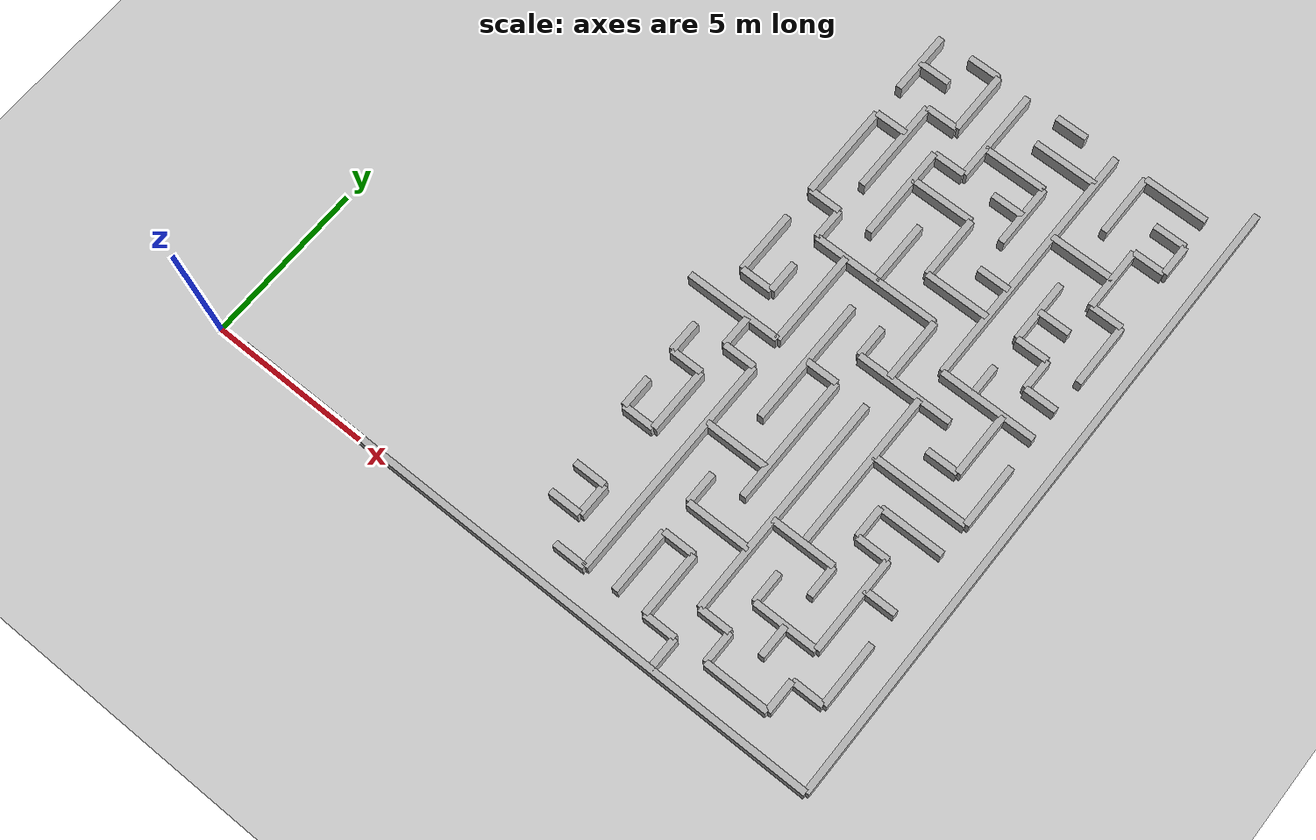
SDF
<sdf version="1.6">
 <world name="maze_world">
  <model name="ground_plane">
   <static>true</static>
   <link name="link">
    <collision name="collision">
     <geometry><plane><normal>0 0 1</normal><size>100 100</size></plane></geometry>
    </collision>
    <visual name="visual">
     <geometry><plane><normal>0 0 1</normal><size>100 100</size></plane></geometry>
     <material><ambient>0.8 0.8 0.8 1</ambient></material>
    </visual>
   </link>
  </model>
  <model name="wall_4">
   <static>true</static>
   <pose>11.5 1 0 0 0 0</pose>
   <link name="link">
    <collision name="collision"><geometry><box><size>1 0.2 1</size></box></geometry></collision>
    <visual name="visual">
     <geometry><box><size>1 0.2 1</size></box></geometry>
     <material><ambient>0.7 0.7 0.7 1</ambient></material>
    </visual>
   </link>
  </model>
  <model name="wall_5">
   <static>true</static>
   <pose>14.5 1 0 0 0 0</pose>
   <link name="link">
    <collision name="collision"><geometry><box><size>1 0.2 1</size></box></geometry></collision>
    <visual name="visual">
     <geometry><box><size>1 0.2 1</size></box></geometry>
     <material><ambient>0.7 0.7 0.7 1</ambient></material>
    </visual>
   </link>
  </model>
  <model name="wall_6">
   <static>true</static>
   <pose>17 1 0 0 0 0</pose>
   <link name="link">
    <collision name="collision"><geometry><box><size>2 0.2 1</size></box></geometry></collision>
    <visual name="visual">
     <geometry><box><size>2 0.2 1</size></box></geometry>
     <material><ambient>0.7 0.7 0.7 1</ambient></material>
    </visual>
   </link>
  </model>
  <model name="wall_11">
   <static>true</static>
   <pose>10.5 2 0 0 0 0</pose>
   <link name="link">
    <collision name="collision"><geometry><box><size>1 0.2 1</size></box></geometry></collision>
    <visual name="visual">
     <geometry><box><size>1 0.2 1</size></box></geometry>
     <material><ambient>0.7 0.7 0.7 1</ambient></material>
    </visual>
   </link>
  </model>
  <model name="wall_12">
   <static>true</static>
   <pose>15.5 2 0 0 0 0</pose>
   <link name="link">
    <collision name="collision"><geometry><box><size>1 0.2 1</size></box></geometry></collision>
    <visual name="visual">
     <geometry><box><size>1 0.2 1</size></box></geometry>
     <material><ambient>0.7 0.7 0.7 1</ambient></material>
    </visual>
   </link>
  </model>
  <model name="wall_13">
   <static>true</static>
   <pose>18.5 2 0 0 0 0</pose>
   <link name="link">
    <collision name="collision"><geometry><box><size>1 0.2 1</size></box></geometry></collision>
    <visual name="visual">
     <geometry><box><size>1 0.2 1</size></box></geometry>
     <material><ambient>0.7 0.7 0.7 1</ambient></material>
    </visual>
   </link>
  </model>
  <model name="wall_17">
   <static>true</static>
   <pose>10.5 3 0 0 0 0</pose>
   <link name="link">
    <collision name="collision"><geometry><box><size>1 0.2 1</size></box></geometry></collision>
    <visual name="visual">
     <geometry><box><size>1 0.2 1</size></box></geometry>
     <material><ambient>0.7 0.7 0.7 1</ambient></material>
    </visual>
   </link>
  </model>
  <model name="wall_18">
   <static>true</static>
   <pose>13.5 3 0 0 0 0</pose>
   <link name="link">
    <collision name="collision"><geometry><box><size>1 0.2 1</size></box></geometry></collision>
    <visual name="visual">
     <geometry><box><size>1 0.2 1</size></box></geometry>
     <material><ambient>0.7 0.7 0.7 1</ambient></material>
    </visual>
   </link>
  </model>
  <model name="wall_19">
   <static>true</static>
   <pose>17 3 0 0 0 0</pose>
   <link name="link">
    <collision name="collision"><geometry><box><size>2 0.2 1</size></box></geometry></collision>
    <visual name="visual">
     <geometry><box><size>2 0.2 1</size></box></geometry>
     <material><ambient>0.7 0.7 0.7 1</ambient></material>
    </visual>
   </link>
  </model>
  <model name="wall_24">
   <static>true</static>
   <pose>14 4 0 0 0 0</pose>
   <link name="link">
    <collision name="collision"><geometry><box><size>2 0.2 1</size></box></geometry></collision>
    <visual name="visual">
     <geometry><box><size>2 0.2 1</size></box></geometry>
     <material><ambient>0.7 0.7 0.7 1</ambient></material>
    </visual>
   </link>
  </model>
  <model name="wall_27">
   <static>true</static>
   <pose>10.5 5 0 0 0 0</pose>
   <link name="link">
    <collision name="collision"><geometry><box><size>1 0.2 1</size></box></geometry></collision>
    <visual name="visual">
     <geometry><box><size>1 0.2 1</size></box></geometry>
     <material><ambient>0.7 0.7 0.7 1</ambient></material>
    </visual>
   </link>
  </model>
  <model name="wall_28">
   <static>true</static>
   <pose>16 5 0 0 0 0</pose>
   <link name="link">
    <collision name="collision"><geometry><box><size>2 0.2 1</size></box></geometry></collision>
    <visual name="visual">
     <geometry><box><size>2 0.2 1</size></box></geometry>
     <material><ambient>0.7 0.7 0.7 1</ambient></material>
    </visual>
   </link>
  </model>
  <model name="wall_29">
   <static>true</static>
   <pose>18.5 5 0 0 0 0</pose>
   <link name="link">
    <collision name="collision"><geometry><box><size>1 0.2 1</size></box></geometry></collision>
    <visual name="visual">
     <geometry><box><size>1 0.2 1</size></box></geometry>
     <material><ambient>0.7 0.7 0.7 1</ambient></material>
    </visual>
   </link>
  </model>
  <model name="wall_32">
   <static>true</static>
   <pose>13 6 0 0 0 0</pose>
   <link name="link">
    <collision name="collision"><geometry><box><size>2 0.2 1</size></box></geometry></collision>
    <visual name="visual">
     <geometry><box><size>2 0.2 1</size></box></geometry>
     <material><ambient>0.7 0.7 0.7 1</ambient></material>
    </visual>
   </link>
  </model>
  <model name="wall_33">
   <static>true</static>
   <pose>17.5 6 0 0 0 0</pose>
   <link name="link">
    <collision name="collision"><geometry><box><size>1 0.2 1</size></box></geometry></collision>
    <visual name="visual">
     <geometry><box><size>1 0.2 1</size></box></geometry>
     <material><ambient>0.7 0.7 0.7 1</ambient></material>
    </visual>
   </link>
  </model>
  <model name="wall_36">
   <static>true</static>
   <pose>10.5 7 0 0 0 0</pose>
   <link name="link">
    <collision name="collision"><geometry><box><size>1 0.2 1</size></box></geometry></collision>
    <visual name="visual">
     <geometry><box><size>1 0.2 1</size></box></geometry>
     <material><ambient>0.7 0.7 0.7 1</ambient></material>
    </visual>
   </link>
  </model>
  <model name="wall_37">
   <static>true</static>
   <pose>18 7 0 0 0 0</pose>
   <link name="link">
    <collision name="collision"><geometry><box><size>2 0.2 1</size></box></geometry></collision>
    <visual name="visual">
     <geometry><box><size>2 0.2 1</size></box></geometry>
     <material><ambient>0.7 0.7 0.7 1</ambient></material>
    </visual>
   </link>
  </model>
  <model name="wall_39">
   <static>true</static>
   <pose>11.5 8 0 0 0 0</pose>
   <link name="link">
    <collision name="collision"><geometry><box><size>1 0.2 1</size></box></geometry></collision>
    <visual name="visual">
     <geometry><box><size>1 0.2 1</size></box></geometry>
     <material><ambient>0.7 0.7 0.7 1</ambient></material>
    </visual>
   </link>
  </model>
  <model name="wall_40">
   <static>true</static>
   <pose>17.5 8 0 0 0 0</pose>
   <link name="link">
    <collision name="collision"><geometry><box><size>3 0.2 1</size></box></geometry></collision>
    <visual name="visual">
     <geometry><box><size>3 0.2 1</size></box></geometry>
     <material><ambient>0.7 0.7 0.7 1</ambient></material>
    </visual>
   </link>
  </model>
  <model name="wall_43">
   <static>true</static>
   <pose>10.5 9 0 0 0 0</pose>
   <link name="link">
    <collision name="collision"><geometry><box><size>3 0.2 1</size></box></geometry></collision>
    <visual name="visual">
     <geometry><box><size>3 0.2 1</size></box></geometry>
     <material><ambient>0.7 0.7 0.7 1</ambient></material>
    </visual>
   </link>
  </model>
  <model name="wall_44">
   <static>true</static>
   <pose>13.5 9 0 0 0 0</pose>
   <link name="link">
    <collision name="collision"><geometry><box><size>1 0.2 1</size></box></geometry></collision>
    <visual name="visual">
     <geometry><box><size>1 0.2 1</size></box></geometry>
     <material><ambient>0.7 0.7 0.7 1</ambient></material>
    </visual>
   </link>
  </model>
  <model name="wall_45">
   <static>true</static>
   <pose>17.5 9 0 0 0 0</pose>
   <link name="link">
    <collision name="collision"><geometry><box><size>1 0.2 1</size></box></geometry></collision>
    <visual name="visual">
     <geometry><box><size>1 0.2 1</size></box></geometry>
     <material><ambient>0.7 0.7 0.7 1</ambient></material>
    </visual>
   </link>
  </model>
  <model name="wall_49">
   <static>true</static>
   <pose>10.5 10 0 0 0 0</pose>
   <link name="link">
    <collision name="collision"><geometry><box><size>1 0.2 1</size></box></geometry></collision>
    <visual name="visual">
     <geometry><box><size>1 0.2 1</size></box></geometry>
     <material><ambient>0.7 0.7 0.7 1</ambient></material>
    </visual>
   </link>
  </model>
  <model name="wall_50">
   <static>true</static>
   <pose>15.5 10 0 0 0 0</pose>
   <link name="link">
    <collision name="collision"><geometry><box><size>3 0.2 1</size></box></geometry></collision>
    <visual name="visual">
     <geometry><box><size>3 0.2 1</size></box></geometry>
     <material><ambient>0.7 0.7 0.7 1</ambient></material>
    </visual>
   </link>
  </model>
  <model name="wall_55">
   <static>true</static>
   <pose>17.5 11 0 0 0 0</pose>
   <link name="link">
    <collision name="collision"><geometry><box><size>3 0.2 1</size></box></geometry></collision>
    <visual name="visual">
     <geometry><box><size>3 0.2 1</size></box></geometry>
     <material><ambient>0.7 0.7 0.7 1</ambient></material>
    </visual>
   </link>
  </model>
  <model name="wall_58">
   <static>true</static>
   <pose>13 12 0 0 0 0</pose>
   <link name="link">
    <collision name="collision"><geometry><box><size>4 0.2 1</size></box></geometry></collision>
    <visual name="visual">
     <geometry><box><size>4 0.2 1</size></box></geometry>
     <material><ambient>0.7 0.7 0.7 1</ambient></material>
    </visual>
   </link>
  </model>
  <model name="wall_59">
   <static>true</static>
   <pose>18.5 12 0 0 0 0</pose>
   <link name="link">
    <collision name="collision"><geometry><box><size>1 0.2 1</size></box></geometry></collision>
    <visual name="visual">
     <geometry><box><size>1 0.2 1</size></box></geometry>
     <material><ambient>0.7 0.7 0.7 1</ambient></material>
    </visual>
   </link>
  </model>
  <model name="wall_63">
   <static>true</static>
   <pose>10.5 13 0 0 0 0</pose>
   <link name="link">
    <collision name="collision"><geometry><box><size>1 0.2 1</size></box></geometry></collision>
    <visual name="visual">
     <geometry><box><size>1 0.2 1</size></box></geometry>
     <material><ambient>0.7 0.7 0.7 1</ambient></material>
    </visual>
   </link>
  </model>
  <model name="wall_64">
   <static>true</static>
   <pose>15 13 0 0 0 0</pose>
   <link name="link">
    <collision name="collision"><geometry><box><size>2 0.2 1</size></box></geometry></collision>
    <visual name="visual">
     <geometry><box><size>2 0.2 1</size></box></geometry>
     <material><ambient>0.7 0.7 0.7 1</ambient></material>
    </visual>
   </link>
  </model>
  <model name="wall_65">
   <static>true</static>
   <pose>17.5 13 0 0 0 0</pose>
   <link name="link">
    <collision name="collision"><geometry><box><size>1 0.2 1</size></box></geometry></collision>
    <visual name="visual">
     <geometry><box><size>1 0.2 1</size></box></geometry>
     <material><ambient>0.7 0.7 0.7 1</ambient></material>
    </visual>
   </link>
  </model>
  <model name="wall_70">
   <static>true</static>
   <pose>15.5 14 0 0 0 0</pose>
   <link name="link">
    <collision name="collision"><geometry><box><size>1 0.2 1</size></box></geometry></collision>
    <visual name="visual">
     <geometry><box><size>1 0.2 1</size></box></geometry>
     <material><ambient>0.7 0.7 0.7 1</ambient></material>
    </visual>
   </link>
  </model>
  <model name="wall_71">
   <static>true</static>
   <pose>17.5 14 0 0 0 0</pose>
   <link name="link">
    <collision name="collision"><geometry><box><size>1 0.2 1</size></box></geometry></collision>
    <visual name="visual">
     <geometry><box><size>1 0.2 1</size></box></geometry>
     <material><ambient>0.7 0.7 0.7 1</ambient></material>
    </visual>
   </link>
  </model>
  <model name="wall_74">
   <static>true</static>
   <pose>13 15 0 0 0 0</pose>
   <link name="link">
    <collision name="collision"><geometry><box><size>2 0.2 1</size></box></geometry></collision>
    <visual name="visual">
     <geometry><box><size>2 0.2 1</size></box></geometry>
     <material><ambient>0.7 0.7 0.7 1</ambient></material>
    </visual>
   </link>
  </model>
  <model name="wall_75">
   <static>true</static>
   <pose>18.5 15 0 0 0 0</pose>
   <link name="link">
    <collision name="collision"><geometry><box><size>1 0.2 1</size></box></geometry></collision>
    <visual name="visual">
     <geometry><box><size>1 0.2 1</size></box></geometry>
     <material><ambient>0.7 0.7 0.7 1</ambient></material>
    </visual>
   </link>
  </model>
  <model name="wall_78">
   <static>true</static>
   <pose>10.5 16 0 0 0 0</pose>
   <link name="link">
    <collision name="collision"><geometry><box><size>1 0.2 1</size></box></geometry></collision>
    <visual name="visual">
     <geometry><box><size>1 0.2 1</size></box></geometry>
     <material><ambient>0.7 0.7 0.7 1</ambient></material>
    </visual>
   </link>
  </model>
  <model name="wall_79">
   <static>true</static>
   <pose>12.5 16 0 0 0 0</pose>
   <link name="link">
    <collision name="collision"><geometry><box><size>1 0.2 1</size></box></geometry></collision>
    <visual name="visual">
     <geometry><box><size>1 0.2 1</size></box></geometry>
     <material><ambient>0.7 0.7 0.7 1</ambient></material>
    </visual>
   </link>
  </model>
  <model name="wall_80">
   <static>true</static>
   <pose>14.5 16 0 0 0 0</pose>
   <link name="link">
    <collision name="collision"><geometry><box><size>1 0.2 1</size></box></geometry></collision>
    <visual name="visual">
     <geometry><box><size>1 0.2 1</size></box></geometry>
     <material><ambient>0.7 0.7 0.7 1</ambient></material>
    </visual>
   </link>
  </model>
  <model name="wall_81">
   <static>true</static>
   <pose>17 16 0 0 0 0</pose>
   <link name="link">
    <collision name="collision"><geometry><box><size>2 0.2 1</size></box></geometry></collision>
    <visual name="visual">
     <geometry><box><size>2 0.2 1</size></box></geometry>
     <material><ambient>0.7 0.7 0.7 1</ambient></material>
    </visual>
   </link>
  </model>
  <model name="wall_85">
   <static>true</static>
   <pose>11.5 17 0 0 0 0</pose>
   <link name="link">
    <collision name="collision"><geometry><box><size>1 0.2 1</size></box></geometry></collision>
    <visual name="visual">
     <geometry><box><size>1 0.2 1</size></box></geometry>
     <material><ambient>0.7 0.7 0.7 1</ambient></material>
    </visual>
   </link>
  </model>
  <model name="wall_86">
   <static>true</static>
   <pose>14 17 0 0 0 0</pose>
   <link name="link">
    <collision name="collision"><geometry><box><size>2 0.2 1</size></box></geometry></collision>
    <visual name="visual">
     <geometry><box><size>2 0.2 1</size></box></geometry>
     <material><ambient>0.7 0.7 0.7 1</ambient></material>
    </visual>
   </link>
  </model>
  <model name="wall_87">
   <static>true</static>
   <pose>18.5 17 0 0 0 0</pose>
   <link name="link">
    <collision name="collision"><geometry><box><size>1 0.2 1</size></box></geometry></collision>
    <visual name="visual">
     <geometry><box><size>1 0.2 1</size></box></geometry>
     <material><ambient>0.7 0.7 0.7 1</ambient></material>
    </visual>
   </link>
  </model>
  <model name="wall_91">
   <static>true</static>
   <pose>10.5 18 0 0 0 0</pose>
   <link name="link">
    <collision name="collision"><geometry><box><size>1 0.2 1</size></box></geometry></collision>
    <visual name="visual">
     <geometry><box><size>1 0.2 1</size></box></geometry>
     <material><ambient>0.7 0.7 0.7 1</ambient></material>
    </visual>
   </link>
  </model>
  <model name="wall_92">
   <static>true</static>
   <pose>15 18 0 0 0 0</pose>
   <link name="link">
    <collision name="collision"><geometry><box><size>2 0.2 1</size></box></geometry></collision>
    <visual name="visual">
     <geometry><box><size>2 0.2 1</size></box></geometry>
     <material><ambient>0.7 0.7 0.7 1</ambient></material>
    </visual>
   </link>
  </model>
  <model name="wall_93">
   <static>true</static>
   <pose>18.5 18 0 0 0 0</pose>
   <link name="link">
    <collision name="collision"><geometry><box><size>1 0.2 1</size></box></geometry></collision>
    <visual name="visual">
     <geometry><box><size>1 0.2 1</size></box></geometry>
     <material><ambient>0.7 0.7 0.7 1</ambient></material>
    </visual>
   </link>
  </model>
  <model name="wall_95">
   <static>true</static>
   <pose>11.5 19 0 0 0 0</pose>
   <link name="link">
    <collision name="collision"><geometry><box><size>1 0.2 1</size></box></geometry></collision>
    <visual name="visual">
     <geometry><box><size>1 0.2 1</size></box></geometry>
     <material><ambient>0.7 0.7 0.7 1</ambient></material>
    </visual>
   </link>
  </model>
  <model name="wall_96">
   <static>true</static>
   <pose>14.5 19 0 0 0 0</pose>
   <link name="link">
    <collision name="collision"><geometry><box><size>1 0.2 1</size></box></geometry></collision>
    <visual name="visual">
     <geometry><box><size>1 0.2 1</size></box></geometry>
     <material><ambient>0.7 0.7 0.7 1</ambient></material>
    </visual>
   </link>
  </model>
  <model name="wall_97">
   <static>true</static>
   <pose>18 19 0 0 0 0</pose>
   <link name="link">
    <collision name="collision"><geometry><box><size>2 0.2 1</size></box></geometry></collision>
    <visual name="visual">
     <geometry><box><size>2 0.2 1</size></box></geometry>
     <material><ambient>0.7 0.7 0.7 1</ambient></material>
    </visual>
   </link>
  </model>
  <model name="wall_142">
   <static>true</static>
   <pose>10 5.5 0 0 0 0</pose>
   <link name="link">
    <collision name="collision"><geometry><box><size>0.2 1 1</size></box></geometry></collision>
    <visual name="visual">
     <geometry><box><size>0.2 1 1</size></box></geometry>
     <material><ambient>0.7 0.7 0.7 1</ambient></material>
    </visual>
   </link>
  </model>
  <model name="wall_143">
   <static>true</static>
   <pose>10 7.5 0 0 0 0</pose>
   <link name="link">
    <collision name="collision"><geometry><box><size>0.2 1 1</size></box></geometry></collision>
    <visual name="visual">
     <geometry><box><size>0.2 1 1</size></box></geometry>
     <material><ambient>0.7 0.7 0.7 1</ambient></material>
    </visual>
   </link>
  </model>
  <model name="wall_144">
   <static>true</static>
   <pose>10 11 0 0 0 0</pose>
   <link name="link">
    <collision name="collision"><geometry><box><size>0.2 2 1</size></box></geometry></collision>
    <visual name="visual">
     <geometry><box><size>0.2 2 1</size></box></geometry>
     <material><ambient>0.7 0.7 0.7 1</ambient></material>
    </visual>
   </link>
  </model>
  <model name="wall_145">
   <static>true</static>
   <pose>10 14.5 0 0 0 0</pose>
   <link name="link">
    <collision name="collision"><geometry><box><size>0.2 3 1</size></box></geometry></collision>
    <visual name="visual">
     <geometry><box><size>0.2 3 1</size></box></geometry>
     <material><ambient>0.7 0.7 0.7 1</ambient></material>
    </visual>
   </link>
  </model>
  <model name="wall_146">
   <static>true</static>
   <pose>10 18 0 0 0 0</pose>
   <link name="link">
    <collision name="collision"><geometry><box><size>0.2 2 1</size></box></geometry></collision>
    <visual name="visual">
     <geometry><box><size>0.2 2 1</size></box></geometry>
     <material><ambient>0.7 0.7 0.7 1</ambient></material>
    </visual>
   </link>
  </model>
  <model name="wall_147">
   <static>true</static>
   <pose>11 2.5 0 0 0 0</pose>
   <link name="link">
    <collision name="collision"><geometry><box><size>0.2 1 1</size></box></geometry></collision>
    <visual name="visual">
     <geometry><box><size>0.2 1 1</size></box></geometry>
     <material><ambient>0.7 0.7 0.7 1</ambient></material>
    </visual>
   </link>
  </model>
  <model name="wall_148">
   <static>true</static>
   <pose>11 6 0 0 0 0</pose>
   <link name="link">
    <collision name="collision"><geometry><box><size>0.2 2 1</size></box></geometry></collision>
    <visual name="visual">
     <geometry><box><size>0.2 2 1</size></box></geometry>
     <material><ambient>0.7 0.7 0.7 1</ambient></material>
    </visual>
   </link>
  </model>
  <model name="wall_149">
   <static>true</static>
   <pose>11 8.5 0 0 0 0</pose>
   <link name="link">
    <collision name="collision"><geometry><box><size>0.2 1 1</size></box></geometry></collision>
    <visual name="visual">
     <geometry><box><size>0.2 1 1</size></box></geometry>
     <material><ambient>0.7 0.7 0.7 1</ambient></material>
    </visual>
   </link>
  </model>
  <model name="wall_150">
   <static>true</static>
   <pose>11 10.5 0 0 0 0</pose>
   <link name="link">
    <collision name="collision"><geometry><box><size>0.2 1 1</size></box></geometry></collision>
    <visual name="visual">
     <geometry><box><size>0.2 1 1</size></box></geometry>
     <material><ambient>0.7 0.7 0.7 1</ambient></material>
    </visual>
   </link>
  </model>
  <model name="wall_151">
   <static>true</static>
   <pose>11 12.5 0 0 0 0</pose>
   <link name="link">
    <collision name="collision"><geometry><box><size>0.2 1 1</size></box></geometry></collision>
    <visual name="visual">
     <geometry><box><size>0.2 1 1</size></box></geometry>
     <material><ambient>0.7 0.7 0.7 1</ambient></material>
    </visual>
   </link>
  </model>
  <model name="wall_152">
   <static>true</static>
   <pose>11 15.5 0 0 0 0</pose>
   <link name="link">
    <collision name="collision"><geometry><box><size>0.2 3 1</size></box></geometry></collision>
    <visual name="visual">
     <geometry><box><size>0.2 3 1</size></box></geometry>
     <material><ambient>0.7 0.7 0.7 1</ambient></material>
    </visual>
   </link>
  </model>
  <model name="wall_153">
   <static>true</static>
   <pose>12 4.5 0 0 0 0</pose>
   <link name="link">
    <collision name="collision"><geometry><box><size>0.2 7 1</size></box></geometry></collision>
    <visual name="visual">
     <geometry><box><size>0.2 7 1</size></box></geometry>
     <material><ambient>0.7 0.7 0.7 1</ambient></material>
    </visual>
   </link>
  </model>
  <model name="wall_154">
   <static>true</static>
   <pose>12 10.5 0 0 0 0</pose>
   <link name="link">
    <collision name="collision"><geometry><box><size>0.2 3 1</size></box></geometry></collision>
    <visual name="visual">
     <geometry><box><size>0.2 3 1</size></box></geometry>
     <material><ambient>0.7 0.7 0.7 1</ambient></material>
    </visual>
   </link>
  </model>
  <model name="wall_155">
   <static>true</static>
   <pose>12 14.5 0 0 0 0</pose>
   <link name="link">
    <collision name="collision"><geometry><box><size>0.2 3 1</size></box></geometry></collision>
    <visual name="visual">
     <geometry><box><size>0.2 3 1</size></box></geometry>
     <material><ambient>0.7 0.7 0.7 1</ambient></material>
    </visual>
   </link>
  </model>
  <model name="wall_156">
   <static>true</static>
   <pose>12 18 0 0 0 0</pose>
   <link name="link">
    <collision name="collision"><geometry><box><size>0.2 2 1</size></box></geometry></collision>
    <visual name="visual">
     <geometry><box><size>0.2 2 1</size></box></geometry>
     <material><ambient>0.7 0.7 0.7 1</ambient></material>
    </visual>
   </link>
  </model>
  <model name="wall_157">
   <static>true</static>
   <pose>13 2 0 0 0 0</pose>
   <link name="link">
    <collision name="collision"><geometry><box><size>0.2 2 1</size></box></geometry></collision>
    <visual name="visual">
     <geometry><box><size>0.2 2 1</size></box></geometry>
     <material><ambient>0.7 0.7 0.7 1</ambient></material>
    </visual>
   </link>
  </model>
  <model name="wall_158">
   <static>true</static>
   <pose>13 4.5 0 0 0 0</pose>
   <link name="link">
    <collision name="collision"><geometry><box><size>0.2 1 1</size></box></geometry></collision>
    <visual name="visual">
     <geometry><box><size>0.2 1 1</size></box></geometry>
     <material><ambient>0.7 0.7 0.7 1</ambient></material>
    </visual>
   </link>
  </model>
  <model name="wall_159">
   <static>true</static>
   <pose>13 9 0 0 0 0</pose>
   <link name="link">
    <collision name="collision"><geometry><box><size>0.2 4 1</size></box></geometry></collision>
    <visual name="visual">
     <geometry><box><size>0.2 4 1</size></box></geometry>
     <material><ambient>0.7 0.7 0.7 1</ambient></material>
    </visual>
   </link>
  </model>
  <model name="wall_160">
   <static>true</static>
   <pose>13 13 0 0 0 0</pose>
   <link name="link">
    <collision name="collision"><geometry><box><size>0.2 2 1</size></box></geometry></collision>
    <visual name="visual">
     <geometry><box><size>0.2 2 1</size></box></geometry>
     <material><ambient>0.7 0.7 0.7 1</ambient></material>
    </visual>
   </link>
  </model>
  <model name="wall_161">
   <static>true</static>
   <pose>13 17.5 0 0 0 0</pose>
   <link name="link">
    <collision name="collision"><geometry><box><size>0.2 3 1</size></box></geometry></collision>
    <visual name="visual">
     <geometry><box><size>0.2 3 1</size></box></geometry>
     <material><ambient>0.7 0.7 0.7 1</ambient></material>
    </visual>
   </link>
  </model>
  <model name="wall_162">
   <static>true</static>
   <pose>14 2 0 0 0 0</pose>
   <link name="link">
    <collision name="collision"><geometry><box><size>0.2 2 1</size></box></geometry></collision>
    <visual name="visual">
     <geometry><box><size>0.2 2 1</size></box></geometry>
     <material><ambient>0.7 0.7 0.7 1</ambient></material>
    </visual>
   </link>
  </model>
  <model name="wall_163">
   <static>true</static>
   <pose>14 7 0 0 0 0</pose>
   <link name="link">
    <collision name="collision"><geometry><box><size>0.2 4 1</size></box></geometry></collision>
    <visual name="visual">
     <geometry><box><size>0.2 4 1</size></box></geometry>
     <material><ambient>0.7 0.7 0.7 1</ambient></material>
    </visual>
   </link>
  </model>
  <model name="wall_164">
   <static>true</static>
   <pose>14 10.5 0 0 0 0</pose>
   <link name="link">
    <collision name="collision"><geometry><box><size>0.2 1 1</size></box></geometry></collision>
    <visual name="visual">
     <geometry><box><size>0.2 1 1</size></box></geometry>
     <material><ambient>0.7 0.7 0.7 1</ambient></material>
    </visual>
   </link>
  </model>
  <model name="wall_165">
   <static>true</static>
   <pose>14 14 0 0 0 0</pose>
   <link name="link">
    <collision name="collision"><geometry><box><size>0.2 2 1</size></box></geometry></collision>
    <visual name="visual">
     <geometry><box><size>0.2 2 1</size></box></geometry>
     <material><ambient>0.7 0.7 0.7 1</ambient></material>
    </visual>
   </link>
  </model>
  <model name="wall_166">
   <static>true</static>
   <pose>15 0.5 0 0 0 0</pose>
   <link name="link">
    <collision name="collision"><geometry><box><size>0.2 1 1</size></box></geometry></collision>
    <visual name="visual">
     <geometry><box><size>0.2 1 1</size></box></geometry>
     <material><ambient>0.7 0.7 0.7 1</ambient></material>
    </visual>
   </link>
  </model>
  <model name="wall_167">
   <static>true</static>
   <pose>15 5.5 0 0 0 0</pose>
   <link name="link">
    <collision name="collision"><geometry><box><size>0.2 7 1</size></box></geometry></collision>
    <visual name="visual">
     <geometry><box><size>0.2 7 1</size></box></geometry>
     <material><ambient>0.7 0.7 0.7 1</ambient></material>
    </visual>
   </link>
  </model>
  <model name="wall_168">
   <static>true</static>
   <pose>15 11 0 0 0 0</pose>
   <link name="link">
    <collision name="collision"><geometry><box><size>0.2 2 1</size></box></geometry></collision>
    <visual name="visual">
     <geometry><box><size>0.2 2 1</size></box></geometry>
     <material><ambient>0.7 0.7 0.7 1</ambient></material>
    </visual>
   </link>
  </model>
  <model name="wall_169">
   <static>true</static>
   <pose>15 16 0 0 0 0</pose>
   <link name="link">
    <collision name="collision"><geometry><box><size>0.2 2 1</size></box></geometry></collision>
    <visual name="visual">
     <geometry><box><size>0.2 2 1</size></box></geometry>
     <material><ambient>0.7 0.7 0.7 1</ambient></material>
    </visual>
   </link>
  </model>
  <model name="wall_170">
   <static>true</static>
   <pose>16 1.5 0 0 0 0</pose>
   <link name="link">
    <collision name="collision"><geometry><box><size>0.2 1 1</size></box></geometry></collision>
    <visual name="visual">
     <geometry><box><size>0.2 1 1</size></box></geometry>
     <material><ambient>0.7 0.7 0.7 1</ambient></material>
    </visual>
   </link>
  </model>
  <model name="wall_171">
   <static>true</static>
   <pose>16 3.5 0 0 0 0</pose>
   <link name="link">
    <collision name="collision"><geometry><box><size>0.2 1 1</size></box></geometry></collision>
    <visual name="visual">
     <geometry><box><size>0.2 1 1</size></box></geometry>
     <material><ambient>0.7 0.7 0.7 1</ambient></material>
    </visual>
   </link>
  </model>
  <model name="wall_172">
   <static>true</static>
   <pose>16 7.5 0 0 0 0</pose>
   <link name="link">
    <collision name="collision"><geometry><box><size>0.2 5 1</size></box></geometry></collision>
    <visual name="visual">
     <geometry><box><size>0.2 5 1</size></box></geometry>
     <material><ambient>0.7 0.7 0.7 1</ambient></material>
    </visual>
   </link>
  </model>
  <model name="wall_173">
   <static>true</static>
   <pose>16 15 0 0 0 0</pose>
   <link name="link">
    <collision name="collision"><geometry><box><size>0.2 8 1</size></box></geometry></collision>
    <visual name="visual">
     <geometry><box><size>0.2 8 1</size></box></geometry>
     <material><ambient>0.7 0.7 0.7 1</ambient></material>
    </visual>
   </link>
  </model>
  <model name="wall_174">
   <static>true</static>
   <pose>17 2.5 0 0 0 0</pose>
   <link name="link">
    <collision name="collision"><geometry><box><size>0.2 1 1</size></box></geometry></collision>
    <visual name="visual">
     <geometry><box><size>0.2 1 1</size></box></geometry>
     <material><ambient>0.7 0.7 0.7 1</ambient></material>
    </visual>
   </link>
  </model>
  <model name="wall_175">
   <static>true</static>
   <pose>17 4.5 0 0 0 0</pose>
   <link name="link">
    <collision name="collision"><geometry><box><size>0.2 1 1</size></box></geometry></collision>
    <visual name="visual">
     <geometry><box><size>0.2 1 1</size></box></geometry>
     <material><ambient>0.7 0.7 0.7 1</ambient></material>
    </visual>
   </link>
  </model>
  <model name="wall_176">
   <static>true</static>
   <pose>17 6.5 0 0 0 0</pose>
   <link name="link">
    <collision name="collision"><geometry><box><size>0.2 1 1</size></box></geometry></collision>
    <visual name="visual">
     <geometry><box><size>0.2 1 1</size></box></geometry>
     <material><ambient>0.7 0.7 0.7 1</ambient></material>
    </visual>
   </link>
  </model>
  <model name="wall_177">
   <static>true</static>
   <pose>17 11.5 0 0 0 0</pose>
   <link name="link">
    <collision name="collision"><geometry><box><size>0.2 1 1</size></box></geometry></collision>
    <visual name="visual">
     <geometry><box><size>0.2 1 1</size></box></geometry>
     <material><ambient>0.7 0.7 0.7 1</ambient></material>
    </visual>
   </link>
  </model>
  <model name="wall_178">
   <static>true</static>
   <pose>17 14 0 0 0 0</pose>
   <link name="link">
    <collision name="collision"><geometry><box><size>0.2 2 1</size></box></geometry></collision>
    <visual name="visual">
     <geometry><box><size>0.2 2 1</size></box></geometry>
     <material><ambient>0.7 0.7 0.7 1</ambient></material>
    </visual>
   </link>
  </model>
  <model name="wall_179">
   <static>true</static>
   <pose>17 18 0 0 0 0</pose>
   <link name="link">
    <collision name="collision"><geometry><box><size>0.2 2 1</size></box></geometry></collision>
    <visual name="visual">
     <geometry><box><size>0.2 2 1</size></box></geometry>
     <material><ambient>0.7 0.7 0.7 1</ambient></material>
    </visual>
   </link>
  </model>
  <model name="wall_180">
   <static>true</static>
   <pose>18 1.5 0 0 0 0</pose>
   <link name="link">
    <collision name="collision"><geometry><box><size>0.2 1 1</size></box></geometry></collision>
    <visual name="visual">
     <geometry><box><size>0.2 1 1</size></box></geometry>
     <material><ambient>0.7 0.7 0.7 1</ambient></material>
    </visual>
   </link>
  </model>
  <model name="wall_181">
   <static>true</static>
   <pose>18 4.5 0 0 0 0</pose>
   <link name="link">
    <collision name="collision"><geometry><box><size>0.2 3 1</size></box></geometry></collision>
    <visual name="visual">
     <geometry><box><size>0.2 3 1</size></box></geometry>
     <material><ambient>0.7 0.7 0.7 1</ambient></material>
    </visual>
   </link>
  </model>
  <model name="wall_182">
   <static>true</static>
   <pose>18 10 0 0 0 0</pose>
   <link name="link">
    <collision name="collision"><geometry><box><size>0.2 2 1</size></box></geometry></collision>
    <visual name="visual">
     <geometry><box><size>0.2 2 1</size></box></geometry>
     <material><ambient>0.7 0.7 0.7 1</ambient></material>
    </visual>
   </link>
  </model>
  <model name="wall_183">
   <static>true</static>
   <pose>18 12.5 0 0 0 0</pose>
   <link name="link">
    <collision name="collision"><geometry><box><size>0.2 1 1</size></box></geometry></collision>
    <visual name="visual">
     <geometry><box><size>0.2 1 1</size></box></geometry>
     <material><ambient>0.7 0.7 0.7 1</ambient></material>
    </visual>
   </link>
  </model>
  <model name="wall_184">
   <static>true</static>
   <pose>18 16 0 0 0 0</pose>
   <link name="link">
    <collision name="collision"><geometry><box><size>0.2 2 1</size></box></geometry></collision>
    <visual name="visual">
     <geometry><box><size>0.2 2 1</size></box></geometry>
     <material><ambient>0.7 0.7 0.7 1</ambient></material>
    </visual>
   </link>
  </model>
  <model name="wall_185">
   <static>true</static>
   <pose>19 3 0 0 0 0</pose>
   <link name="link">
    <collision name="collision"><geometry><box><size>0.2 2 1</size></box></geometry></collision>
    <visual name="visual">
     <geometry><box><size>0.2 2 1</size></box></geometry>
     <material><ambient>0.7 0.7 0.7 1</ambient></material>
    </visual>
   </link>
  </model>
  <model name="wall_186">
   <static>true</static>
   <pose>19 9 0 0 0 0</pose>
   <link name="link">
    <collision name="collision"><geometry><box><size>0.2 2 1</size></box></geometry></collision>
    <visual name="visual">
     <geometry><box><size>0.2 2 1</size></box></geometry>
     <material><ambient>0.7 0.7 0.7 1</ambient></material>
    </visual>
   </link>
  </model>
  <model name="wall_187">
   <static>true</static>
   <pose>19 14 0 0 0 0</pose>
   <link name="link">
    <collision name="collision"><geometry><box><size>0.2 2 1</size></box></geometry></collision>
    <visual name="visual">
     <geometry><box><size>0.2 2 1</size></box></geometry>
     <material><ambient>0.7 0.7 0.7 1</ambient></material>
    </visual>
   </link>
  </model>
  <model name="wall_188">
   <static>true</static>
   <pose>19 17.5 0 0 0 0</pose>
   <link name="link">
    <collision name="collision"><geometry><box><size>0.2 1 1</size></box></geometry></collision>
    <visual name="visual">
     <geometry><box><size>0.2 1 1</size></box></geometry>
     <material><ambient>0.7 0.7 0.7 1</ambient></material>
    </visual>
   </link>
  </model>
  <model name="wall_189">
   <static>true</static>
   <pose>10.5 0 0 0 0 0</pose>
   <link name="link">
    <collision name="collision"><geometry><box><size>19 0.2 1</size></box></geometry></collision>
    <visual name="visual">
     <geometry><box><size>19 0.2 1</size></box></geometry>
     <material><ambient>0.7 0.7 0.7 1</ambient></material>
    </visual>
   </link>
  </model>
  <model name="wall_192">
   <static>true</static>
   <pose>20 10 0 0 0 0</pose>
   <link name="link">
    <collision name="collision"><geometry><box><size>0.2 20 1</size></box></geometry></collision>
    <visual name="visual">
     <geometry><box><size>0.2 20 1</size></box></geometry>
     <material><ambient>0.7 0.7 0.7 1</ambient></material>
    </visual>
   </link>
  </model>
 </world>
</sdf>
